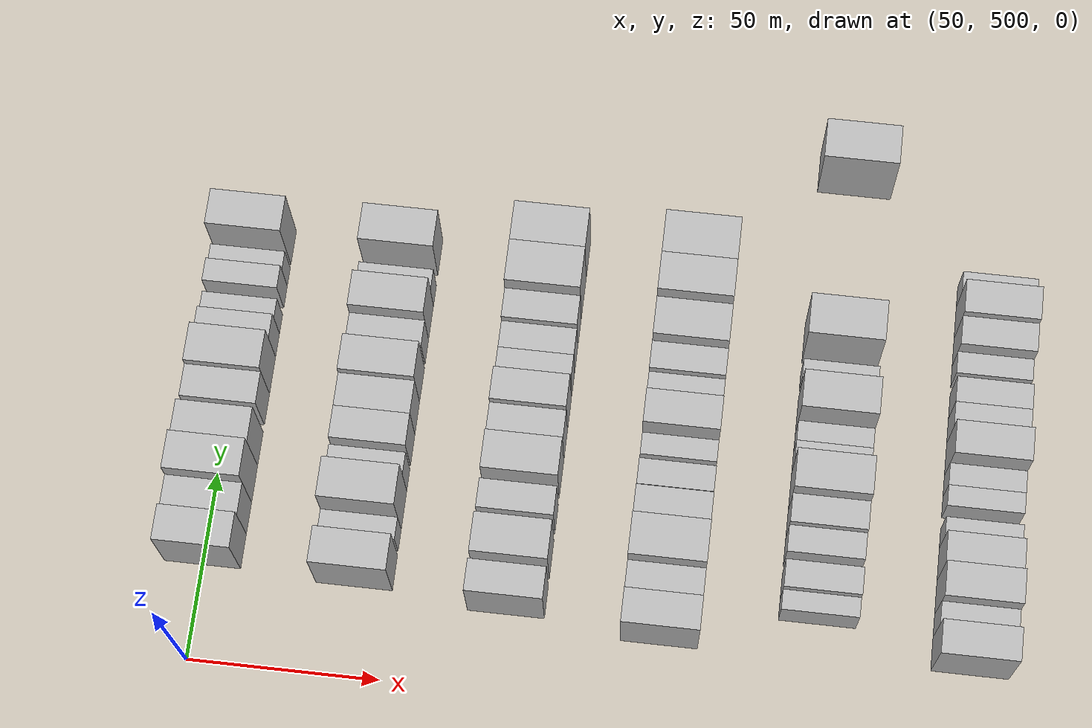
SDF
<sdf version="1.6">
 <world name="default">
  <model name="building_122">
   <static>1</static>
   <pose>50.0000 529.9322 0 0.000000 0.000000 0.000000</pose>
   <link name="link">
    <pose>0 0 10.50 0 0 0</pose>
    <collision name="collision"><geometry><box><size>20.0000 9.3820 21.0000</size></box></geometry></collision>
    <visual name="visual">
     <cast_shadows>0</cast_shadows>
     <geometry><box><size>20.0000 9.3820 21.0000</size></box></geometry>
     <material>
      <script>
       <uri>model://HANNAS_wall/materials/scripts</uri>
       <uri>model://HANNAS_wall/materials/textures</uri>
       <name>vrc/HANNAS_wall</name>
      </script>
     </material>
    </visual>
   </link>
  </model>
  <model name="building_123">
   <static>1</static>
   <pose>50.0000 538.9714 0 0.000000 0.000000 0.000000</pose>
   <link name="link">
    <pose>0 0 9.00 0 0 0</pose>
    <collision name="collision"><geometry><box><size>20.0000 8.6963 18.0000</size></box></geometry></collision>
    <visual name="visual">
     <cast_shadows>0</cast_shadows>
     <geometry><box><size>20.0000 8.6963 18.0000</size></box></geometry>
     <material>
      <script>
       <uri>model://HANNAS_wall/materials/scripts</uri>
       <uri>model://HANNAS_wall/materials/textures</uri>
       <name>vrc/HANNAS_wall</name>
      </script>
     </material>
    </visual>
   </link>
  </model>
  <model name="building_124">
   <static>1</static>
   <pose>50.0000 548.3520 0 0.000000 0.000000 0.000000</pose>
   <link name="link">
    <pose>0 0 12.00 0 0 0</pose>
    <collision name="collision"><geometry><box><size>20.0000 10.0649 24.0000</size></box></geometry></collision>
    <visual name="visual">
     <cast_shadows>0</cast_shadows>
     <geometry><box><size>20.0000 10.0649 24.0000</size></box></geometry>
     <material>
      <script>
       <uri>model://HANNAS_wall/materials/scripts</uri>
       <uri>model://HANNAS_wall/materials/textures</uri>
       <name>vrc/HANNAS_wall</name>
      </script>
     </material>
    </visual>
   </link>
  </model>
  <model name="building_125">
   <static>1</static>
   <pose>50.0000 558.0726 0 0.000000 0.000000 0.000000</pose>
   <link name="link">
    <pose>0 0 10.50 0 0 0</pose>
    <collision name="collision"><geometry><box><size>20.0000 9.3762 21.0000</size></box></geometry></collision>
    <visual name="visual">
     <cast_shadows>0</cast_shadows>
     <geometry><box><size>20.0000 9.3762 21.0000</size></box></geometry>
     <material>
      <script>
       <uri>model://HANNAS_wall/materials/scripts</uri>
       <uri>model://HANNAS_wall/materials/textures</uri>
       <name>vrc/HANNAS_wall</name>
      </script>
     </material>
    </visual>
   </link>
  </model>
  <model name="building_126">
   <static>1</static>
   <pose>50.0000 569.1404 0 0.000000 0.000000 0.000000</pose>
   <link name="link">
    <pose>0 0 9.00 0 0 0</pose>
    <collision name="collision"><geometry><box><size>20.0000 8.7595 18.0000</size></box></geometry></collision>
    <visual name="visual">
     <cast_shadows>0</cast_shadows>
     <geometry><box><size>20.0000 8.7595 18.0000</size></box></geometry>
     <material>
      <script>
       <uri>model://HANNAS_wall/materials/scripts</uri>
       <uri>model://HANNAS_wall/materials/textures</uri>
       <name>vrc/HANNAS_wall</name>
      </script>
     </material>
    </visual>
   </link>
  </model>
  <model name="building_127">
   <static>1</static>
   <pose>50.0000 578.7353 0 0.000000 0.000000 0.000000</pose>
   <link name="link">
    <pose>0 0 10.50 0 0 0</pose>
    <collision name="collision"><geometry><box><size>20.0000 10.4303 21.0000</size></box></geometry></collision>
    <visual name="visual">
     <cast_shadows>0</cast_shadows>
     <geometry><box><size>20.0000 10.4303 21.0000</size></box></geometry>
     <material>
      <script>
       <uri>model://HANNAS_wall/materials/scripts</uri>
       <uri>model://HANNAS_wall/materials/textures</uri>
       <name>vrc/HANNAS_wall</name>
      </script>
     </material>
    </visual>
   </link>
  </model>
  <model name="building_128">
   <static>1</static>
   <pose>50.0000 587.3159 0 0.000000 0.000000 0.000000</pose>
   <link name="link">
    <pose>0 0 7.50 0 0 0</pose>
    <collision name="collision"><geometry><box><size>20.0000 6.7308 15.0000</size></box></geometry></collision>
    <visual name="visual">
     <cast_shadows>0</cast_shadows>
     <geometry><box><size>20.0000 6.7308 15.0000</size></box></geometry>
     <material>
      <script>
       <uri>model://HANNAS_wall/materials/scripts</uri>
       <uri>model://HANNAS_wall/materials/textures</uri>
       <name>vrc/HANNAS_wall</name>
      </script>
     </material>
    </visual>
   </link>
  </model>
  <model name="building_129">
   <static>1</static>
   <pose>50.0000 593.3958 0 0.000000 0.000000 0.000000</pose>
   <link name="link">
    <pose>0 0 6.00 0 0 0</pose>
    <collision name="collision"><geometry><box><size>20.0000 5.4289 12.0000</size></box></geometry></collision>
    <visual name="visual">
     <cast_shadows>0</cast_shadows>
     <geometry><box><size>20.0000 5.4289 12.0000</size></box></geometry>
     <material>
      <script>
       <uri>model://HANNAS_wall/materials/scripts</uri>
       <uri>model://HANNAS_wall/materials/textures</uri>
       <name>vrc/HANNAS_wall</name>
      </script>
     </material>
    </visual>
   </link>
  </model>
  <model name="building_130">
   <static>1</static>
   <pose>50.0000 601.2711 0 0.000000 0.000000 0.000000</pose>
   <link name="link">
    <pose>0 0 7.50 0 0 0</pose>
    <collision name="collision"><geometry><box><size>20.0000 6.3218 15.0000</size></box></geometry></collision>
    <visual name="visual">
     <cast_shadows>0</cast_shadows>
     <geometry><box><size>20.0000 6.3218 15.0000</size></box></geometry>
     <material>
      <script>
       <uri>model://HANNAS_wall/materials/scripts</uri>
       <uri>model://HANNAS_wall/materials/textures</uri>
       <name>vrc/HANNAS_wall</name>
      </script>
     </material>
    </visual>
   </link>
  </model>
  <model name="building_131">
   <static>1</static>
   <pose>50.0000 607.0685 0 0.000000 0.000000 0.000000</pose>
   <link name="link">
    <pose>0 0 6.00 0 0 0</pose>
    <collision name="collision"><geometry><box><size>20.0000 5.2731 12.0000</size></box></geometry></collision>
    <visual name="visual">
     <cast_shadows>0</cast_shadows>
     <geometry><box><size>20.0000 5.2731 12.0000</size></box></geometry>
     <material>
      <script>
       <uri>model://HANNAS_wall/materials/scripts</uri>
       <uri>model://HANNAS_wall/materials/textures</uri>
       <name>vrc/HANNAS_wall</name>
      </script>
     </material>
    </visual>
   </link>
  </model>
  <model name="building_132">
   <static>1</static>
   <pose>50.0000 615.6330 0 0.000000 0.000000 0.000000</pose>
   <link name="link">
    <pose>0 0 12.00 0 0 0</pose>
    <collision name="collision"><geometry><box><size>20.0000 9.8559 24.0000</size></box></geometry></collision>
    <visual name="visual">
     <cast_shadows>0</cast_shadows>
     <geometry><box><size>20.0000 9.8559 24.0000</size></box></geometry>
     <material>
      <script>
       <uri>model://HANNAS_wall/materials/scripts</uri>
       <uri>model://HANNAS_wall/materials/textures</uri>
       <name>vrc/HANNAS_wall</name>
      </script>
     </material>
    </visual>
   </link>
  </model>
  <model name="building_260">
   <static>1</static>
   <pose>90.0000 528.5816 0 0.000000 0.000000 0.000000</pose>
   <link name="link">
    <pose>0 0 10.50 0 0 0</pose>
    <collision name="collision"><geometry><box><size>20.0000 9.5294 21.0000</size></box></geometry></collision>
    <visual name="visual">
     <cast_shadows>0</cast_shadows>
     <geometry><box><size>20.0000 9.5294 21.0000</size></box></geometry>
     <material>
      <script>
       <uri>model://HANNAS_wall/materials/scripts</uri>
       <uri>model://HANNAS_wall/materials/textures</uri>
       <name>vrc/HANNAS_wall</name>
      </script>
     </material>
    </visual>
   </link>
  </model>
  <model name="building_261">
   <static>1</static>
   <pose>90.0000 537.3178 0 0.000000 0.000000 0.000000</pose>
   <link name="link">
    <pose>0 0 6.00 0 0 0</pose>
    <collision name="collision"><geometry><box><size>20.0000 5.9431 12.0000</size></box></geometry></collision>
    <visual name="visual">
     <cast_shadows>0</cast_shadows>
     <geometry><box><size>20.0000 5.9431 12.0000</size></box></geometry>
     <material>
      <script>
       <uri>model://HANNAS_wall/materials/scripts</uri>
       <uri>model://HANNAS_wall/materials/textures</uri>
       <name>vrc/HANNAS_wall</name>
      </script>
     </material>
    </visual>
   </link>
  </model>
  <model name="building_262">
   <static>1</static>
   <pose>90.0000 545.5711 0 0.000000 0.000000 0.000000</pose>
   <link name="link">
    <pose>0 0 12.00 0 0 0</pose>
    <collision name="collision"><geometry><box><size>20.0000 10.5635 24.0000</size></box></geometry></collision>
    <visual name="visual">
     <cast_shadows>0</cast_shadows>
     <geometry><box><size>20.0000 10.5635 24.0000</size></box></geometry>
     <material>
      <script>
       <uri>model://HANNAS_wall/materials/scripts</uri>
       <uri>model://HANNAS_wall/materials/textures</uri>
       <name>vrc/HANNAS_wall</name>
      </script>
     </material>
    </visual>
   </link>
  </model>
  <model name="building_263">
   <static>1</static>
   <pose>90.0000 553.8691 0 0.000000 0.000000 0.000000</pose>
   <link name="link">
    <pose>0 0 7.50 0 0 0</pose>
    <collision name="collision"><geometry><box><size>20.0000 6.0324 15.0000</size></box></geometry></collision>
    <visual name="visual">
     <cast_shadows>0</cast_shadows>
     <geometry><box><size>20.0000 6.0324 15.0000</size></box></geometry>
     <material>
      <script>
       <uri>model://HANNAS_wall/materials/scripts</uri>
       <uri>model://HANNAS_wall/materials/textures</uri>
       <name>vrc/HANNAS_wall</name>
      </script>
     </material>
    </visual>
   </link>
  </model>
  <model name="building_264">
   <static>1</static>
   <pose>90.0000 562.2179 0 0.000000 0.000000 0.000000</pose>
   <link name="link">
    <pose>0 0 9.00 0 0 0</pose>
    <collision name="collision"><geometry><box><size>20.0000 8.6653 18.0000</size></box></geometry></collision>
    <visual name="visual">
     <cast_shadows>0</cast_shadows>
     <geometry><box><size>20.0000 8.6653 18.0000</size></box></geometry>
     <material>
      <script>
       <uri>model://HANNAS_wall/materials/scripts</uri>
       <uri>model://HANNAS_wall/materials/textures</uri>
       <name>vrc/HANNAS_wall</name>
      </script>
     </material>
    </visual>
   </link>
  </model>
  <model name="building_265">
   <static>1</static>
   <pose>90.0000 571.0432 0 0.000000 0.000000 0.000000</pose>
   <link name="link">
    <pose>0 0 9.00 0 0 0</pose>
    <collision name="collision"><geometry><box><size>20.0000 8.9852 18.0000</size></box></geometry></collision>
    <visual name="visual">
     <cast_shadows>0</cast_shadows>
     <geometry><box><size>20.0000 8.9852 18.0000</size></box></geometry>
     <material>
      <script>
       <uri>model://HANNAS_wall/materials/scripts</uri>
       <uri>model://HANNAS_wall/materials/textures</uri>
       <name>vrc/HANNAS_wall</name>
      </script>
     </material>
    </visual>
   </link>
  </model>
  <model name="building_266">
   <static>1</static>
   <pose>90.0000 580.4017 0 0.000000 0.000000 0.000000</pose>
   <link name="link">
    <pose>0 0 10.50 0 0 0</pose>
    <collision name="collision"><geometry><box><size>20.0000 9.7319 21.0000</size></box></geometry></collision>
    <visual name="visual">
     <cast_shadows>0</cast_shadows>
     <geometry><box><size>20.0000 9.7319 21.0000</size></box></geometry>
     <material>
      <script>
       <uri>model://HANNAS_wall/materials/scripts</uri>
       <uri>model://HANNAS_wall/materials/textures</uri>
       <name>vrc/HANNAS_wall</name>
      </script>
     </material>
    </visual>
   </link>
  </model>
  <model name="building_267">
   <static>1</static>
   <pose>90.0000 589.8214 0 0.000000 0.000000 0.000000</pose>
   <link name="link">
    <pose>0 0 7.50 0 0 0</pose>
    <collision name="collision"><geometry><box><size>20.0000 7.1074 15.0000</size></box></geometry></collision>
    <visual name="visual">
     <cast_shadows>0</cast_shadows>
     <geometry><box><size>20.0000 7.1074 15.0000</size></box></geometry>
     <material>
      <script>
       <uri>model://HANNAS_wall/materials/scripts</uri>
       <uri>model://HANNAS_wall/materials/textures</uri>
       <name>vrc/HANNAS_wall</name>
      </script>
     </material>
    </visual>
   </link>
  </model>
  <model name="building_268">
   <static>1</static>
   <pose>90.0000 598.2245 0 0.000000 0.000000 0.000000</pose>
   <link name="link">
    <pose>0 0 10.50 0 0 0</pose>
    <collision name="collision"><geometry><box><size>20.0000 9.6988 21.0000</size></box></geometry></collision>
    <visual name="visual">
     <cast_shadows>0</cast_shadows>
     <geometry><box><size>20.0000 9.6988 21.0000</size></box></geometry>
     <material>
      <script>
       <uri>model://HANNAS_wall/materials/scripts</uri>
       <uri>model://HANNAS_wall/materials/textures</uri>
       <name>vrc/HANNAS_wall</name>
      </script>
     </material>
    </visual>
   </link>
  </model>
  <model name="building_269">
   <static>1</static>
   <pose>90.0000 606.0461 0 0.000000 0.000000 0.000000</pose>
   <link name="link">
    <pose>0 0 6.00 0 0 0</pose>
    <collision name="collision"><geometry><box><size>20.0000 5.9442 12.0000</size></box></geometry></collision>
    <visual name="visual">
     <cast_shadows>0</cast_shadows>
     <geometry><box><size>20.0000 5.9442 12.0000</size></box></geometry>
     <material>
      <script>
       <uri>model://HANNAS_wall/materials/scripts</uri>
       <uri>model://HANNAS_wall/materials/textures</uri>
       <name>vrc/HANNAS_wall</name>
      </script>
     </material>
    </visual>
   </link>
  </model>
  <model name="building_270">
   <static>1</static>
   <pose>90.0000 617.1491 0 0.000000 0.000000 0.000000</pose>
   <link name="link">
    <pose>0 0 10.50 0 0 0</pose>
    <collision name="collision"><geometry><box><size>20.0000 10.2618 21.0000</size></box></geometry></collision>
    <visual name="visual">
     <cast_shadows>0</cast_shadows>
     <geometry><box><size>20.0000 10.2618 21.0000</size></box></geometry>
     <material>
      <script>
       <uri>model://HANNAS_wall/materials/scripts</uri>
       <uri>model://HANNAS_wall/materials/textures</uri>
       <name>vrc/HANNAS_wall</name>
      </script>
     </material>
    </visual>
   </link>
  </model>
  <model name="building_401">
   <static>1</static>
   <pose>130.0000 525.0579 0 0.000000 0.000000 0.000000</pose>
   <link name="link">
    <pose>0 0 10.50 0 0 0</pose>
    <collision name="collision"><geometry><box><size>20.0000 8.4023 21.0000</size></box></geometry></collision>
    <visual name="visual">
     <cast_shadows>0</cast_shadows>
     <geometry><box><size>20.0000 8.4023 21.0000</size></box></geometry>
     <material>
      <script>
       <uri>model://HANNAS_wall/materials/scripts</uri>
       <uri>model://HANNAS_wall/materials/textures</uri>
       <name>vrc/HANNAS_wall</name>
      </script>
     </material>
    </visual>
   </link>
  </model>
  <model name="building_402">
   <static>1</static>
   <pose>130.0000 536.4441 0 0.000000 0.000000 0.000000</pose>
   <link name="link">
    <pose>0 0 10.50 0 0 0</pose>
    <collision name="collision"><geometry><box><size>20.0000 10.3701 21.0000</size></box></geometry></collision>
    <visual name="visual">
     <cast_shadows>0</cast_shadows>
     <geometry><box><size>20.0000 10.3701 21.0000</size></box></geometry>
     <material>
      <script>
       <uri>model://HANNAS_wall/materials/scripts</uri>
       <uri>model://HANNAS_wall/materials/textures</uri>
       <name>vrc/HANNAS_wall</name>
      </script>
     </material>
    </visual>
   </link>
  </model>
  <model name="building_403">
   <static>1</static>
   <pose>130.0000 547.4918 0 0.000000 0.000000 0.000000</pose>
   <link name="link">
    <pose>0 0 9.00 0 0 0</pose>
    <collision name="collision"><geometry><box><size>20.0000 7.7252 18.0000</size></box></geometry></collision>
    <visual name="visual">
     <cast_shadows>0</cast_shadows>
     <geometry><box><size>20.0000 7.7252 18.0000</size></box></geometry>
     <material>
      <script>
       <uri>model://HANNAS_wall/materials/scripts</uri>
       <uri>model://HANNAS_wall/materials/textures</uri>
       <name>vrc/HANNAS_wall</name>
      </script>
     </material>
    </visual>
   </link>
  </model>
  <model name="building_404">
   <static>1</static>
   <pose>130.0000 558.4718 0 0.000000 0.000000 0.000000</pose>
   <link name="link">
    <pose>0 0 10.50 0 0 0</pose>
    <collision name="collision"><geometry><box><size>20.0000 10.2350 21.0000</size></box></geometry></collision>
    <visual name="visual">
     <cast_shadows>0</cast_shadows>
     <geometry><box><size>20.0000 10.2350 21.0000</size></box></geometry>
     <material>
      <script>
       <uri>model://HANNAS_wall/materials/scripts</uri>
       <uri>model://HANNAS_wall/materials/textures</uri>
       <name>vrc/HANNAS_wall</name>
      </script>
     </material>
    </visual>
   </link>
  </model>
  <model name="building_405">
   <static>1</static>
   <pose>130.0000 567.7429 0 0.000000 0.000000 0.000000</pose>
   <link name="link">
    <pose>0 0 9.00 0 0 0</pose>
    <collision name="collision"><geometry><box><size>20.0000 8.3071 18.0000</size></box></geometry></collision>
    <visual name="visual">
     <cast_shadows>0</cast_shadows>
     <geometry><box><size>20.0000 8.3071 18.0000</size></box></geometry>
     <material>
      <script>
       <uri>model://HANNAS_wall/materials/scripts</uri>
       <uri>model://HANNAS_wall/materials/textures</uri>
       <name>vrc/HANNAS_wall</name>
      </script>
     </material>
    </visual>
   </link>
  </model>
  <model name="building_406">
   <static>1</static>
   <pose>130.0000 576.3044 0 0.000000 0.000000 0.000000</pose>
   <link name="link">
    <pose>0 0 10.50 0 0 0</pose>
    <collision name="collision"><geometry><box><size>20.0000 8.8159 21.0000</size></box></geometry></collision>
    <visual name="visual">
     <cast_shadows>0</cast_shadows>
     <geometry><box><size>20.0000 8.8159 21.0000</size></box></geometry>
     <material>
      <script>
       <uri>model://HANNAS_wall/materials/scripts</uri>
       <uri>model://HANNAS_wall/materials/textures</uri>
       <name>vrc/HANNAS_wall</name>
      </script>
     </material>
    </visual>
   </link>
  </model>
  <model name="building_407">
   <static>1</static>
   <pose>130.0000 584.9736 0 0.000000 0.000000 0.000000</pose>
   <link name="link">
    <pose>0 0 7.50 0 0 0</pose>
    <collision name="collision"><geometry><box><size>20.0000 6.5226 15.0000</size></box></geometry></collision>
    <visual name="visual">
     <cast_shadows>0</cast_shadows>
     <geometry><box><size>20.0000 6.5226 15.0000</size></box></geometry>
     <material>
      <script>
       <uri>model://HANNAS_wall/materials/scripts</uri>
       <uri>model://HANNAS_wall/materials/textures</uri>
       <name>vrc/HANNAS_wall</name>
      </script>
     </material>
    </visual>
   </link>
  </model>
  <model name="building_408">
   <static>1</static>
   <pose>130.0000 591.9069 0 0.000000 0.000000 0.000000</pose>
   <link name="link">
    <pose>0 0 7.50 0 0 0</pose>
    <collision name="collision"><geometry><box><size>20.0000 7.3439 15.0000</size></box></geometry></collision>
    <visual name="visual">
     <cast_shadows>0</cast_shadows>
     <geometry><box><size>20.0000 7.3439 15.0000</size></box></geometry>
     <material>
      <script>
       <uri>model://HANNAS_wall/materials/scripts</uri>
       <uri>model://HANNAS_wall/materials/textures</uri>
       <name>vrc/HANNAS_wall</name>
      </script>
     </material>
    </visual>
   </link>
  </model>
  <model name="building_409">
   <static>1</static>
   <pose>130.0000 599.6281 0 0.000000 0.000000 0.000000</pose>
   <link name="link">
    <pose>0 0 9.00 0 0 0</pose>
    <collision name="collision"><geometry><box><size>20.0000 8.0986 18.0000</size></box></geometry></collision>
    <visual name="visual">
     <cast_shadows>0</cast_shadows>
     <geometry><box><size>20.0000 8.0986 18.0000</size></box></geometry>
     <material>
      <script>
       <uri>model://HANNAS_wall/materials/scripts</uri>
       <uri>model://HANNAS_wall/materials/textures</uri>
       <name>vrc/HANNAS_wall</name>
      </script>
     </material>
    </visual>
   </link>
  </model>
  <model name="building_410">
   <static>1</static>
   <pose>130.0000 609.4008 0 0.000000 0.000000 0.000000</pose>
   <link name="link">
    <pose>0 0 12.00 0 0 0</pose>
    <collision name="collision"><geometry><box><size>20.0000 11.4467 24.0000</size></box></geometry></collision>
    <visual name="visual">
     <cast_shadows>0</cast_shadows>
     <geometry><box><size>20.0000 11.4467 24.0000</size></box></geometry>
     <material>
      <script>
       <uri>model://HANNAS_wall/materials/scripts</uri>
       <uri>model://HANNAS_wall/materials/textures</uri>
       <name>vrc/HANNAS_wall</name>
      </script>
     </material>
    </visual>
   </link>
  </model>
  <model name="building_411">
   <static>1</static>
   <pose>130.0000 620.6005 0 0.000000 0.000000 0.000000</pose>
   <link name="link">
    <pose>0 0 12.00 0 0 0</pose>
    <collision name="collision"><geometry><box><size>20.0000 10.9527 24.0000</size></box></geometry></collision>
    <visual name="visual">
     <cast_shadows>0</cast_shadows>
     <geometry><box><size>20.0000 10.9527 24.0000</size></box></geometry>
     <material>
      <script>
       <uri>model://HANNAS_wall/materials/scripts</uri>
       <uri>model://HANNAS_wall/materials/textures</uri>
       <name>vrc/HANNAS_wall</name>
      </script>
     </material>
    </visual>
   </link>
  </model>
  <model name="building_543">
   <static>1</static>
   <pose>170.0000 521.7872 0 0.000000 0.000000 0.000000</pose>
   <link name="link">
    <pose>0 0 10.50 0 0 0</pose>
    <collision name="collision"><geometry><box><size>20.0000 8.9902 21.0000</size></box></geometry></collision>
    <visual name="visual">
     <cast_shadows>0</cast_shadows>
     <geometry><box><size>20.0000 8.9902 21.0000</size></box></geometry>
     <material>
      <script>
       <uri>model://HANNAS_wall/materials/scripts</uri>
       <uri>model://HANNAS_wall/materials/textures</uri>
       <name>vrc/HANNAS_wall</name>
      </script>
     </material>
    </visual>
   </link>
  </model>
  <model name="building_544">
   <static>1</static>
   <pose>170.0000 530.2137 0 0.000000 0.000000 0.000000</pose>
   <link name="link">
    <pose>0 0 9.00 0 0 0</pose>
    <collision name="collision"><geometry><box><size>20.0000 7.8629 18.0000</size></box></geometry></collision>
    <visual name="visual">
     <cast_shadows>0</cast_shadows>
     <geometry><box><size>20.0000 7.8629 18.0000</size></box></geometry>
     <material>
      <script>
       <uri>model://HANNAS_wall/materials/scripts</uri>
       <uri>model://HANNAS_wall/materials/textures</uri>
       <name>vrc/HANNAS_wall</name>
      </script>
     </material>
    </visual>
   </link>
  </model>
  <model name="building_545">
   <static>1</static>
   <pose>170.0000 539.7086 0 0.000000 0.000000 0.000000</pose>
   <link name="link">
    <pose>0 0 12.00 0 0 0</pose>
    <collision name="collision"><geometry><box><size>20.0000 11.1269 24.0000</size></box></geometry></collision>
    <visual name="visual">
     <cast_shadows>0</cast_shadows>
     <geometry><box><size>20.0000 11.1269 24.0000</size></box></geometry>
     <material>
      <script>
       <uri>model://HANNAS_wall/materials/scripts</uri>
       <uri>model://HANNAS_wall/materials/textures</uri>
       <name>vrc/HANNAS_wall</name>
      </script>
     </material>
    </visual>
   </link>
  </model>
  <model name="building_546">
   <static>1</static>
   <pose>170.0000 549.7612 0 0.000000 0.000000 0.000000</pose>
   <link name="link">
    <pose>0 0 9.00 0 0 0</pose>
    <collision name="collision"><geometry><box><size>20.0000 8.9782 18.0000</size></box></geometry></collision>
    <visual name="visual">
     <cast_shadows>0</cast_shadows>
     <geometry><box><size>20.0000 8.9782 18.0000</size></box></geometry>
     <material>
      <script>
       <uri>model://HANNAS_wall/materials/scripts</uri>
       <uri>model://HANNAS_wall/materials/textures</uri>
       <name>vrc/HANNAS_wall</name>
      </script>
     </material>
    </visual>
   </link>
  </model>
  <model name="building_547">
   <static>1</static>
   <pose>170.0000 558.7272 0 0.000000 0.000000 0.000000</pose>
   <link name="link">
    <pose>0 0 7.50 0 0 0</pose>
    <collision name="collision"><geometry><box><size>20.0000 6.9538 15.0000</size></box></geometry></collision>
    <visual name="visual">
     <cast_shadows>0</cast_shadows>
     <geometry><box><size>20.0000 6.9538 15.0000</size></box></geometry>
     <material>
      <script>
       <uri>model://HANNAS_wall/materials/scripts</uri>
       <uri>model://HANNAS_wall/materials/textures</uri>
       <name>vrc/HANNAS_wall</name>
      </script>
     </material>
    </visual>
   </link>
  </model>
  <model name="building_548">
   <static>1</static>
   <pose>170.0000 567.1588 0 0.000000 0.000000 0.000000</pose>
   <link name="link">
    <pose>0 0 6.00 0 0 0</pose>
    <collision name="collision"><geometry><box><size>20.0000 5.9094 12.0000</size></box></geometry></collision>
    <visual name="visual">
     <cast_shadows>0</cast_shadows>
     <geometry><box><size>20.0000 5.9094 12.0000</size></box></geometry>
     <material>
      <script>
       <uri>model://HANNAS_wall/materials/scripts</uri>
       <uri>model://HANNAS_wall/materials/textures</uri>
       <name>vrc/HANNAS_wall</name>
      </script>
     </material>
    </visual>
   </link>
  </model>
  <model name="building_549">
   <static>1</static>
   <pose>170.0000 574.6937 0 0.000000 0.000000 0.000000</pose>
   <link name="link">
    <pose>0 0 10.50 0 0 0</pose>
    <collision name="collision"><geometry><box><size>20.0000 9.1604 21.0000</size></box></geometry></collision>
    <visual name="visual">
     <cast_shadows>0</cast_shadows>
     <geometry><box><size>20.0000 9.1604 21.0000</size></box></geometry>
     <material>
      <script>
       <uri>model://HANNAS_wall/materials/scripts</uri>
       <uri>model://HANNAS_wall/materials/textures</uri>
       <name>vrc/HANNAS_wall</name>
      </script>
     </material>
    </visual>
   </link>
  </model>
  <model name="building_550">
   <static>1</static>
   <pose>170.0000 582.5877 0 0.000000 0.000000 0.000000</pose>
   <link name="link">
    <pose>0 0 7.50 0 0 0</pose>
    <collision name="collision"><geometry><box><size>20.0000 6.6274 15.0000</size></box></geometry></collision>
    <visual name="visual">
     <cast_shadows>0</cast_shadows>
     <geometry><box><size>20.0000 6.6274 15.0000</size></box></geometry>
     <material>
      <script>
       <uri>model://HANNAS_wall/materials/scripts</uri>
       <uri>model://HANNAS_wall/materials/textures</uri>
       <name>vrc/HANNAS_wall</name>
      </script>
     </material>
    </visual>
   </link>
  </model>
  <model name="building_551">
   <static>1</static>
   <pose>170.0000 589.6398 0 0.000000 0.000000 0.000000</pose>
   <link name="link">
    <pose>0 0 9.00 0 0 0</pose>
    <collision name="collision"><geometry><box><size>20.0000 7.4769 18.0000</size></box></geometry></collision>
    <visual name="visual">
     <cast_shadows>0</cast_shadows>
     <geometry><box><size>20.0000 7.4769 18.0000</size></box></geometry>
     <material>
      <script>
       <uri>model://HANNAS_wall/materials/scripts</uri>
       <uri>model://HANNAS_wall/materials/textures</uri>
       <name>vrc/HANNAS_wall</name>
      </script>
     </material>
    </visual>
   </link>
  </model>
  <model name="building_552">
   <static>1</static>
   <pose>170.0000 599.5317 0 0.000000 0.000000 0.000000</pose>
   <link name="link">
    <pose>0 0 10.50 0 0 0</pose>
    <collision name="collision"><geometry><box><size>20.0000 10.3068 21.0000</size></box></geometry></collision>
    <visual name="visual">
     <cast_shadows>0</cast_shadows>
     <geometry><box><size>20.0000 10.3068 21.0000</size></box></geometry>
     <material>
      <script>
       <uri>model://HANNAS_wall/materials/scripts</uri>
       <uri>model://HANNAS_wall/materials/textures</uri>
       <name>vrc/HANNAS_wall</name>
      </script>
     </material>
    </visual>
   </link>
  </model>
  <model name="building_553">
   <static>1</static>
   <pose>170.0000 610.9140 0 0.000000 0.000000 0.000000</pose>
   <link name="link">
    <pose>0 0 12.00 0 0 0</pose>
    <collision name="collision"><geometry><box><size>20.0000 10.4579 24.0000</size></box></geometry></collision>
    <visual name="visual">
     <cast_shadows>0</cast_shadows>
     <geometry><box><size>20.0000 10.4579 24.0000</size></box></geometry>
     <material>
      <script>
       <uri>model://HANNAS_wall/materials/scripts</uri>
       <uri>model://HANNAS_wall/materials/textures</uri>
       <name>vrc/HANNAS_wall</name>
      </script>
     </material>
    </visual>
   </link>
  </model>
  <model name="building_554">
   <static>1</static>
   <pose>170.0000 622.0780 0 0.000000 0.000000 0.000000</pose>
   <link name="link">
    <pose>0 0 12.00 0 0 0</pose>
    <collision name="collision"><geometry><box><size>20.0000 11.8701 24.0000</size></box></geometry></collision>
    <visual name="visual">
     <cast_shadows>0</cast_shadows>
     <geometry><box><size>20.0000 11.8701 24.0000</size></box></geometry>
     <material>
      <script>
       <uri>model://HANNAS_wall/materials/scripts</uri>
       <uri>model://HANNAS_wall/materials/textures</uri>
       <name>vrc/HANNAS_wall</name>
      </script>
     </material>
    </visual>
   </link>
  </model>
  <model name="building_682">
   <static>1</static>
   <pose>210.0000 529.8112 0 0.000000 0.000000 0.000000</pose>
   <link name="link">
    <pose>0 0 6.00 0 0 0</pose>
    <collision name="collision"><geometry><box><size>20.0000 5.2571 12.0000</size></box></geometry></collision>
    <visual name="visual">
     <cast_shadows>0</cast_shadows>
     <geometry><box><size>20.0000 5.2571 12.0000</size></box></geometry>
     <material>
      <script>
       <uri>model://HANNAS_wall/materials/scripts</uri>
       <uri>model://HANNAS_wall/materials/textures</uri>
       <name>vrc/HANNAS_wall</name>
      </script>
     </material>
    </visual>
   </link>
  </model>
  <model name="building_683">
   <static>1</static>
   <pose>210.0000 536.0546 0 0.000000 0.000000 0.000000</pose>
   <link name="link">
    <pose>0 0 7.50 0 0 0</pose>
    <collision name="collision"><geometry><box><size>20.0000 7.2296 15.0000</size></box></geometry></collision>
    <visual name="visual">
     <cast_shadows>0</cast_shadows>
     <geometry><box><size>20.0000 7.2296 15.0000</size></box></geometry>
     <material>
      <script>
       <uri>model://HANNAS_wall/materials/scripts</uri>
       <uri>model://HANNAS_wall/materials/textures</uri>
       <name>vrc/HANNAS_wall</name>
      </script>
     </material>
    </visual>
   </link>
  </model>
  <model name="building_684">
   <static>1</static>
   <pose>210.0000 545.1939 0 0.000000 0.000000 0.000000</pose>
   <link name="link">
    <pose>0 0 7.50 0 0 0</pose>
    <collision name="collision"><geometry><box><size>20.0000 7.0490 15.0000</size></box></geometry></collision>
    <visual name="visual">
     <cast_shadows>0</cast_shadows>
     <geometry><box><size>20.0000 7.0490 15.0000</size></box></geometry>
     <material>
      <script>
       <uri>model://HANNAS_wall/materials/scripts</uri>
       <uri>model://HANNAS_wall/materials/textures</uri>
       <name>vrc/HANNAS_wall</name>
      </script>
     </material>
    </visual>
   </link>
  </model>
  <model name="building_685">
   <static>1</static>
   <pose>210.0000 552.5058 0 0.000000 0.000000 0.000000</pose>
   <link name="link">
    <pose>0 0 9.00 0 0 0</pose>
    <collision name="collision"><geometry><box><size>20.0000 7.5747 18.0000</size></box></geometry></collision>
    <visual name="visual">
     <cast_shadows>0</cast_shadows>
     <geometry><box><size>20.0000 7.5747 18.0000</size></box></geometry>
     <material>
      <script>
       <uri>model://HANNAS_wall/materials/scripts</uri>
       <uri>model://HANNAS_wall/materials/textures</uri>
       <name>vrc/HANNAS_wall</name>
      </script>
     </material>
    </visual>
   </link>
  </model>
  <model name="building_686">
   <static>1</static>
   <pose>210.0000 561.4430 0 0.000000 0.000000 0.000000</pose>
   <link name="link">
    <pose>0 0 12.00 0 0 0</pose>
    <collision name="collision"><geometry><box><size>20.0000 10.2998 24.0000</size></box></geometry></collision>
    <visual name="visual">
     <cast_shadows>0</cast_shadows>
     <geometry><box><size>20.0000 10.2998 24.0000</size></box></geometry>
     <material>
      <script>
       <uri>model://HANNAS_wall/materials/scripts</uri>
       <uri>model://HANNAS_wall/materials/textures</uri>
       <name>vrc/HANNAS_wall</name>
      </script>
     </material>
    </visual>
   </link>
  </model>
  <model name="building_687">
   <static>1</static>
   <pose>210.0000 569.5171 0 0.000000 0.000000 0.000000</pose>
   <link name="link">
    <pose>0 0 6.00 0 0 0</pose>
    <collision name="collision"><geometry><box><size>20.0000 5.8483 12.0000</size></box></geometry></collision>
    <visual name="visual">
     <cast_shadows>0</cast_shadows>
     <geometry><box><size>20.0000 5.8483 12.0000</size></box></geometry>
     <material>
      <script>
       <uri>model://HANNAS_wall/materials/scripts</uri>
       <uri>model://HANNAS_wall/materials/textures</uri>
       <name>vrc/HANNAS_wall</name>
      </script>
     </material>
    </visual>
   </link>
  </model>
  <model name="building_688">
   <static>1</static>
   <pose>210.0000 575.1296 0 0.000000 0.000000 0.000000</pose>
   <link name="link">
    <pose>0 0 6.00 0 0 0</pose>
    <collision name="collision"><geometry><box><size>20.0000 5.3767 12.0000</size></box></geometry></collision>
    <visual name="visual">
     <cast_shadows>0</cast_shadows>
     <geometry><box><size>20.0000 5.3767 12.0000</size></box></geometry>
     <material>
      <script>
       <uri>model://HANNAS_wall/materials/scripts</uri>
       <uri>model://HANNAS_wall/materials/textures</uri>
       <name>vrc/HANNAS_wall</name>
      </script>
     </material>
    </visual>
   </link>
  </model>
  <model name="building_689">
   <static>1</static>
   <pose>210.0000 582.8361 0 0.000000 0.000000 0.000000</pose>
   <link name="link">
    <pose>0 0 12.00 0 0 0</pose>
    <collision name="collision"><geometry><box><size>20.0000 10.0364 24.0000</size></box></geometry></collision>
    <visual name="visual">
     <cast_shadows>0</cast_shadows>
     <geometry><box><size>20.0000 10.0364 24.0000</size></box></geometry>
     <material>
      <script>
       <uri>model://HANNAS_wall/materials/scripts</uri>
       <uri>model://HANNAS_wall/materials/textures</uri>
       <name>vrc/HANNAS_wall</name>
      </script>
     </material>
    </visual>
   </link>
  </model>
  <model name="building_690">
   <static>1</static>
   <pose>210.0000 592.4071 0 0.000000 0.000000 0.000000</pose>
   <link name="link">
    <pose>0 0 6.00 0 0 0</pose>
    <collision name="collision"><geometry><box><size>20.0000 5.1056 12.0000</size></box></geometry></collision>
    <visual name="visual">
     <cast_shadows>0</cast_shadows>
     <geometry><box><size>20.0000 5.1056 12.0000</size></box></geometry>
     <material>
      <script>
       <uri>model://HANNAS_wall/materials/scripts</uri>
       <uri>model://HANNAS_wall/materials/textures</uri>
       <name>vrc/HANNAS_wall</name>
      </script>
     </material>
    </visual>
   </link>
  </model>
  <model name="building_691">
   <static>1</static>
   <pose>210.0000 603.4541 0 0.000000 0.000000 0.000000</pose>
   <link name="link">
    <pose>0 0 12.00 0 0 0</pose>
    <collision name="collision"><geometry><box><size>20.0000 10.9884 24.0000</size></box></geometry></collision>
    <visual name="visual">
     <cast_shadows>0</cast_shadows>
     <geometry><box><size>20.0000 10.9884 24.0000</size></box></geometry>
     <material>
      <script>
       <uri>model://HANNAS_wall/materials/scripts</uri>
       <uri>model://HANNAS_wall/materials/textures</uri>
       <name>vrc/HANNAS_wall</name>
      </script>
     </material>
    </visual>
   </link>
  </model>
  <model name="building_692">
   <static>1</static>
   <pose>210.0000 653.4075 0 0.000000 0.000000 0.000000</pose>
   <link name="link">
    <pose>0 0 12.00 0 0 0</pose>
    <collision name="collision"><geometry><box><size>20.0000 10.9728 24.0000</size></box></geometry></collision>
    <visual name="visual">
     <cast_shadows>0</cast_shadows>
     <geometry><box><size>20.0000 10.9728 24.0000</size></box></geometry>
     <material>
      <script>
       <uri>model://HANNAS_wall/materials/scripts</uri>
       <uri>model://HANNAS_wall/materials/textures</uri>
       <name>vrc/HANNAS_wall</name>
      </script>
     </material>
    </visual>
   </link>
  </model>
  <model name="building_825">
   <static>1</static>
   <pose>250.0000 522.6518 0 0.000000 0.000000 0.000000</pose>
   <link name="link">
    <pose>0 0 10.50 0 0 0</pose>
    <collision name="collision"><geometry><box><size>20.0000 8.8069 21.0000</size></box></geometry></collision>
    <visual name="visual">
     <cast_shadows>0</cast_shadows>
     <geometry><box><size>20.0000 8.8069 21.0000</size></box></geometry>
     <material>
      <script>
       <uri>model://HANNAS_wall/materials/scripts</uri>
       <uri>model://HANNAS_wall/materials/textures</uri>
       <name>vrc/HANNAS_wall</name>
      </script>
     </material>
    </visual>
   </link>
  </model>
  <model name="building_826">
   <static>1</static>
   <pose>250.0000 530.0654 0 0.000000 0.000000 0.000000</pose>
   <link name="link">
    <pose>0 0 7.50 0 0 0</pose>
    <collision name="collision"><geometry><box><size>20.0000 6.0204 15.0000</size></box></geometry></collision>
    <visual name="visual">
     <cast_shadows>0</cast_shadows>
     <geometry><box><size>20.0000 6.0204 15.0000</size></box></geometry>
     <material>
      <script>
       <uri>model://HANNAS_wall/materials/scripts</uri>
       <uri>model://HANNAS_wall/materials/textures</uri>
       <name>vrc/HANNAS_wall</name>
      </script>
     </material>
    </visual>
   </link>
  </model>
  <model name="building_827">
   <static>1</static>
   <pose>250.0000 537.6188 0 0.000000 0.000000 0.000000</pose>
   <link name="link">
    <pose>0 0 10.50 0 0 0</pose>
    <collision name="collision"><geometry><box><size>20.0000 9.0863 21.0000</size></box></geometry></collision>
    <visual name="visual">
     <cast_shadows>0</cast_shadows>
     <geometry><box><size>20.0000 9.0863 21.0000</size></box></geometry>
     <material>
      <script>
       <uri>model://HANNAS_wall/materials/scripts</uri>
       <uri>model://HANNAS_wall/materials/textures</uri>
       <name>vrc/HANNAS_wall</name>
      </script>
     </material>
    </visual>
   </link>
  </model>
  <model name="building_828">
   <static>1</static>
   <pose>250.0000 546.5049 0 0.000000 0.000000 0.000000</pose>
   <link name="link">
    <pose>0 0 9.00 0 0 0</pose>
    <collision name="collision"><geometry><box><size>20.0000 8.6861 18.0000</size></box></geometry></collision>
    <visual name="visual">
     <cast_shadows>0</cast_shadows>
     <geometry><box><size>20.0000 8.6861 18.0000</size></box></geometry>
     <material>
      <script>
       <uri>model://HANNAS_wall/materials/scripts</uri>
       <uri>model://HANNAS_wall/materials/textures</uri>
       <name>vrc/HANNAS_wall</name>
      </script>
     </material>
    </visual>
   </link>
  </model>
  <model name="building_829">
   <static>1</static>
   <pose>250.0000 553.5161 0 0.000000 0.000000 0.000000</pose>
   <link name="link">
    <pose>0 0 6.00 0 0 0</pose>
    <collision name="collision"><geometry><box><size>20.0000 5.3363 12.0000</size></box></geometry></collision>
    <visual name="visual">
     <cast_shadows>0</cast_shadows>
     <geometry><box><size>20.0000 5.3363 12.0000</size></box></geometry>
     <material>
      <script>
       <uri>model://HANNAS_wall/materials/scripts</uri>
       <uri>model://HANNAS_wall/materials/textures</uri>
       <name>vrc/HANNAS_wall</name>
      </script>
     </material>
    </visual>
   </link>
  </model>
  <model name="building_830">
   <static>1</static>
   <pose>250.0000 561.9773 0 0.000000 0.000000 0.000000</pose>
   <link name="link">
    <pose>0 0 6.00 0 0 0</pose>
    <collision name="collision"><geometry><box><size>20.0000 5.5861 12.0000</size></box></geometry></collision>
    <visual name="visual">
     <cast_shadows>0</cast_shadows>
     <geometry><box><size>20.0000 5.5861 12.0000</size></box></geometry>
     <material>
      <script>
       <uri>model://HANNAS_wall/materials/scripts</uri>
       <uri>model://HANNAS_wall/materials/textures</uri>
       <name>vrc/HANNAS_wall</name>
      </script>
     </material>
    </visual>
   </link>
  </model>
  <model name="building_831">
   <static>1</static>
   <pose>250.0000 567.7316 0 0.000000 0.000000 0.000000</pose>
   <link name="link">
    <pose>0 0 6.00 0 0 0</pose>
    <collision name="collision"><geometry><box><size>20.0000 5.9224 12.0000</size></box></geometry></collision>
    <visual name="visual">
     <cast_shadows>0</cast_shadows>
     <geometry><box><size>20.0000 5.9224 12.0000</size></box></geometry>
     <material>
      <script>
       <uri>model://HANNAS_wall/materials/scripts</uri>
       <uri>model://HANNAS_wall/materials/textures</uri>
       <name>vrc/HANNAS_wall</name>
      </script>
     </material>
    </visual>
   </link>
  </model>
  <model name="building_832">
   <static>1</static>
   <pose>250.0000 575.1527 0 0.000000 0.000000 0.000000</pose>
   <link name="link">
    <pose>0 0 10.50 0 0 0</pose>
    <collision name="collision"><geometry><box><size>20.0000 8.9199 21.0000</size></box></geometry></collision>
    <visual name="visual">
     <cast_shadows>0</cast_shadows>
     <geometry><box><size>20.0000 8.9199 21.0000</size></box></geometry>
     <material>
      <script>
       <uri>model://HANNAS_wall/materials/scripts</uri>
       <uri>model://HANNAS_wall/materials/textures</uri>
       <name>vrc/HANNAS_wall</name>
      </script>
     </material>
    </visual>
   </link>
  </model>
  <model name="building_833">
   <static>1</static>
   <pose>250.0000 583.0774 0 0.000000 0.000000 0.000000</pose>
   <link name="link">
    <pose>0 0 7.50 0 0 0</pose>
    <collision name="collision"><geometry><box><size>20.0000 6.9294 15.0000</size></box></geometry></collision>
    <visual name="visual">
     <cast_shadows>0</cast_shadows>
     <geometry><box><size>20.0000 6.9294 15.0000</size></box></geometry>
     <material>
      <script>
       <uri>model://HANNAS_wall/materials/scripts</uri>
       <uri>model://HANNAS_wall/materials/textures</uri>
       <name>vrc/HANNAS_wall</name>
      </script>
     </material>
    </visual>
   </link>
  </model>
  <model name="building_834">
   <static>1</static>
   <pose>250.0000 590.0211 0 0.000000 0.000000 0.000000</pose>
   <link name="link">
    <pose>0 0 7.50 0 0 0</pose>
    <collision name="collision"><geometry><box><size>20.0000 6.9580 15.0000</size></box></geometry></collision>
    <visual name="visual">
     <cast_shadows>0</cast_shadows>
     <geometry><box><size>20.0000 6.9580 15.0000</size></box></geometry>
     <material>
      <script>
       <uri>model://HANNAS_wall/materials/scripts</uri>
       <uri>model://HANNAS_wall/materials/textures</uri>
       <name>vrc/HANNAS_wall</name>
      </script>
     </material>
    </visual>
   </link>
  </model>
  <model name="building_835">
   <static>1</static>
   <pose>250.0000 598.4786 0 0.000000 0.000000 0.000000</pose>
   <link name="link">
    <pose>0 0 6.00 0 0 0</pose>
    <collision name="collision"><geometry><box><size>20.0000 5.9571 12.0000</size></box></geometry></collision>
    <visual name="visual">
     <cast_shadows>0</cast_shadows>
     <geometry><box><size>20.0000 5.9571 12.0000</size></box></geometry>
     <material>
      <script>
       <uri>model://HANNAS_wall/materials/scripts</uri>
       <uri>model://HANNAS_wall/materials/textures</uri>
       <name>vrc/HANNAS_wall</name>
      </script>
     </material>
    </visual>
   </link>
  </model>
  <model name="building_836">
   <static>1</static>
   <pose>250.0000 605.3740 0 0.000000 0.000000 0.000000</pose>
   <link name="link">
    <pose>0 0 9.00 0 0 0</pose>
    <collision name="collision"><geometry><box><size>20.0000 7.8338 18.0000</size></box></geometry></collision>
    <visual name="visual">
     <cast_shadows>0</cast_shadows>
     <geometry><box><size>20.0000 7.8338 18.0000</size></box></geometry>
     <material>
      <script>
       <uri>model://HANNAS_wall/materials/scripts</uri>
       <uri>model://HANNAS_wall/materials/textures</uri>
       <name>vrc/HANNAS_wall</name>
      </script>
     </material>
    </visual>
   </link>
  </model>
  <model name="building_837">
   <static>1</static>
   <pose>250.0000 613.8399 0 0.000000 0.000000 0.000000</pose>
   <link name="link">
    <pose>0 0 10.50 0 0 0</pose>
    <collision name="collision"><geometry><box><size>20.0000 9.0979 21.0000</size></box></geometry></collision>
    <visual name="visual">
     <cast_shadows>0</cast_shadows>
     <geometry><box><size>20.0000 9.0979 21.0000</size></box></geometry>
     <material>
      <script>
       <uri>model://HANNAS_wall/materials/scripts</uri>
       <uri>model://HANNAS_wall/materials/textures</uri>
       <name>vrc/HANNAS_wall</name>
      </script>
     </material>
    </visual>
   </link>
  </model>
  <model name="building_838">
   <static>1</static>
   <pose>250.0000 621.2610 0 0.000000 0.000000 0.000000</pose>
   <link name="link">
    <pose>0 0 6.00 0 0 0</pose>
    <collision name="collision"><geometry><box><size>20.0000 5.7443 12.0000</size></box></geometry></collision>
    <visual name="visual">
     <cast_shadows>0</cast_shadows>
     <geometry><box><size>20.0000 5.7443 12.0000</size></box></geometry>
     <material>
      <script>
       <uri>model://HANNAS_wall/materials/scripts</uri>
       <uri>model://HANNAS_wall/materials/textures</uri>
       <name>vrc/HANNAS_wall</name>
      </script>
     </material>
    </visual>
   </link>
  </model>
 </world>
</sdf>
